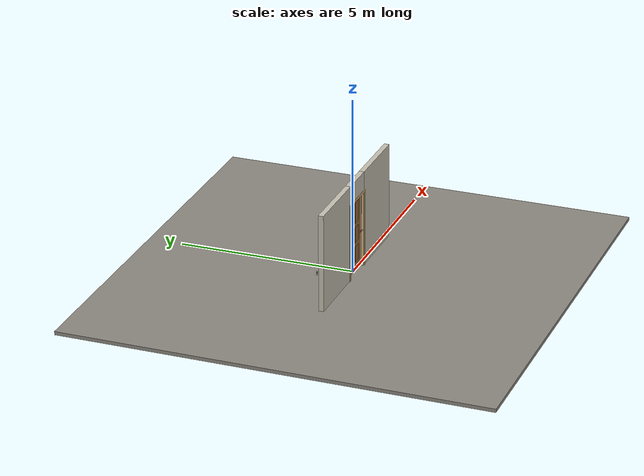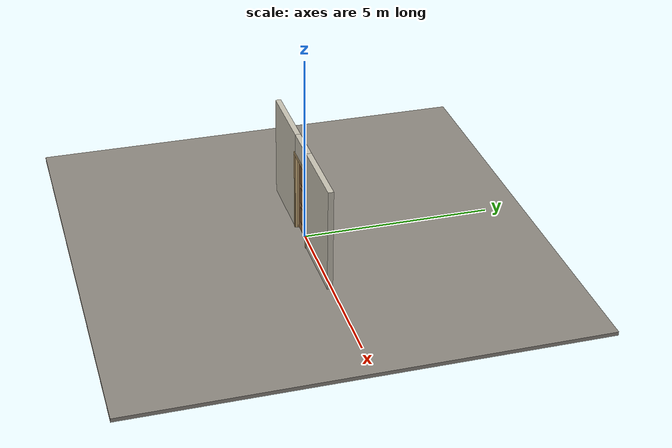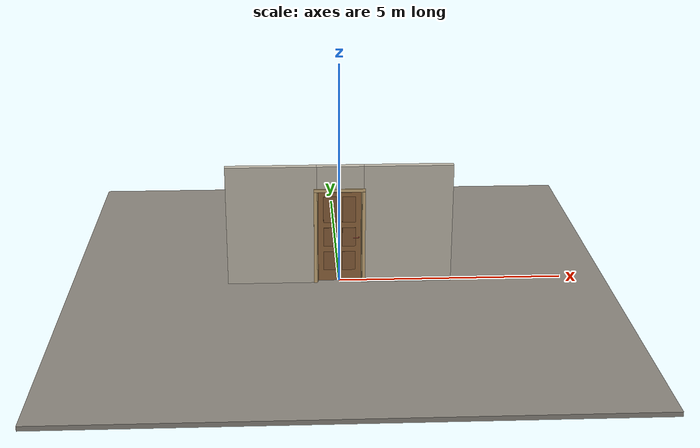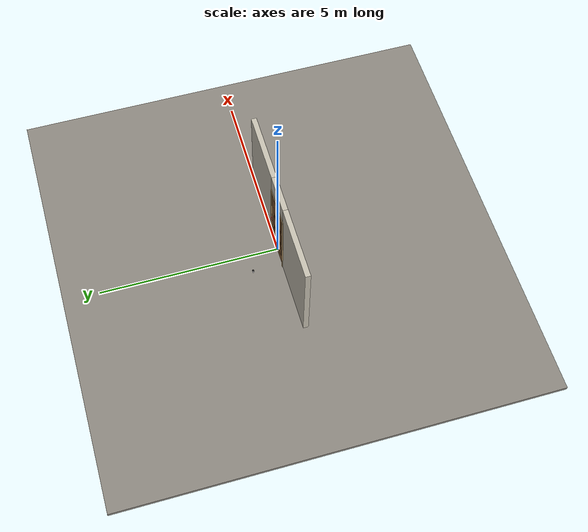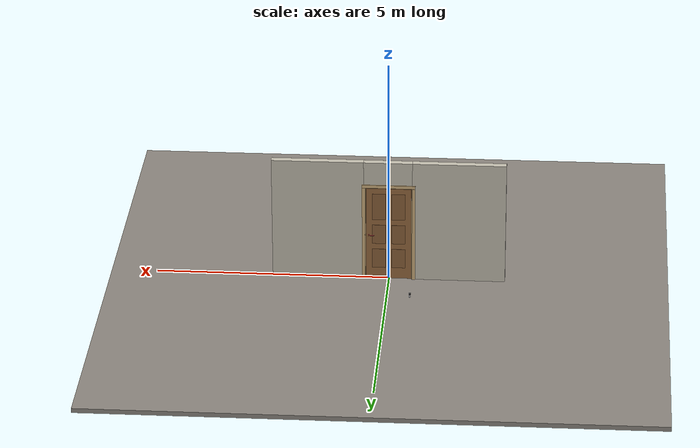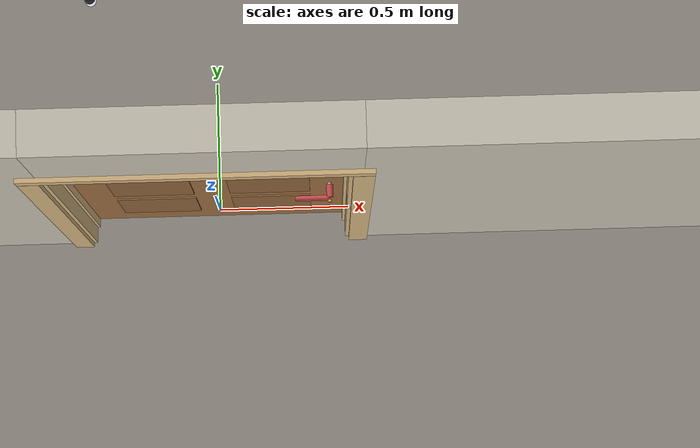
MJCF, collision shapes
<?xml version="1.0" ?>
<mujoco model="db0073_swing_single_full">
  <compiler angle="radian" meshdir="../../hardware" texturedir="../../textures" autolimits="true" inertiafromgeom="false"/>
  <option timestep="0.002" integrator="implicitfast" cone="elliptic" impratio="10" noslip_iterations="3">
    <flag multiccd="enable"/>
  </option>
  <size memory="16M"/>
  <default>
    <geom condim="4" solref="0.005 1" solimp="0.95 0.99 0.001"/>
    <joint solreflimit="0.005 1" solimplimit="0.95 0.99 0.001"/>
    <tendon solreflimit="0.005 1"/>
    <equality solref="0.002 1"/>
  </default>
  <visual>
    <headlight ambient="0.4 0.4 0.4" diffuse="0.7 0.7 0.7" specular="0.2 0.2 0.2"/>
    <quality shadowsize="4096"/>
    <map znear="0.01" zfar="60"/>
  </visual>
  <asset>
    <mesh name="hinge_e22b26c0c1" file="hinge_e22b26c0c1.obj"/>
    <mesh name="hinge_jamb_e1d088f8dc" file="hinge_jamb_e1d088f8dc.obj"/>
    <mesh name="house_numbers_ad0a8e8be0" file="house_numbers_ad0a8e8be0.obj"/>
    <mesh name="lever_9f02b544cf" file="lever_9f02b544cf.obj"/>
    <material name="mat_floor" rgba="0.55 0.53 0.5 1" specular="0.2" shininess="0.15" reflectance="0"/>
    <material name="mat_wall" rgba="0.78 0.76 0.7 1" specular="0.2" shininess="0.1" reflectance="0"/>
    <material name="mat_leaf" rgba="0.6 0.42 0.25 1" specular="0.2" shininess="0.6" reflectance="0"/>
    <material name="mat_leaf_panel" rgba="0.552 0.386 0.23 1" specular="0.2" shininess="0.6" reflectance="0"/>
    <material name="mat_hinge" rgba="0.65 0.66 0.68 1" specular="0.74" shininess="0.5" reflectance="0.36"/>
    <material name="mat_op_nickel_satin" rgba="0.72 0.7 0.66 1" specular="0.8" shininess="0.65" reflectance="0.4"/>
    <material name="mat_trim" rgba="0.85 0.66 0.3 1" specular="0.8" shininess="0.75" reflectance="0.4"/>
    <material name="mat_keyway" rgba="0.05 0.05 0.05 1" specular="0.2" shininess="0.5" reflectance="0"/>
    <material name="mat_bolt" rgba="0.75 0.76 0.77 1" specular="0.8" shininess="0.65" reflectance="0.4"/>
    <material name="mat_frame" rgba="0.82 0.7 0.5 1" specular="0.2" shininess="0.45" reflectance="0"/>
    <material name="mat_seal" rgba="0.1 0.1 0.1 1" specular="0.2" shininess="0.1" reflectance="0"/>
    <material name="mat_numbers" rgba="0.05 0.05 0.05 1" specular="0.38" shininess="0.3" reflectance="0.12"/>
    <material name="mat_bumper_stop" rgba="0.08 0.08 0.08 1" specular="0.2" shininess="0.1" reflectance="0"/>
    <material name="mat_stop_base" rgba="0.9 0.9 0.92 1" specular="0.8" shininess="0.9" reflectance="0.4"/>
    <texture name="skybox" type="skybox" builtin="gradient" rgb1="0.6 0.7 0.85" rgb2="0.9 0.92 0.95" width="256" height="256"/>
  </asset>
  <worldbody>
    <light name="sun" pos="1.5 -2.5 4" dir="-0.3 0.5 -0.8" directional="true" diffuse="0.8 0.8 0.8" specular="0.3 0.3 0.3" castshadow="true"/>
    <light name="fill" pos="-1.5 2.5 3" dir="0.3 -0.5 -0.7" directional="true" diffuse="0.35 0.35 0.4" castshadow="false"/>
    <camera name="robot_view" pos="0 -2.681312 1.812087" xyaxes="1 0 0 0 0.26963 0.962964" fovy="52"/>
    <camera name="far_view" pos="0 2.594313 1.812087" xyaxes="-1 0 0 0 -0.26963 0.962964" fovy="52"/>
    <camera name="iso" pos="2.004737 -2.259262 2.234138" xyaxes="0.741536 0.670913 0 -0.242917 0.268487 0.932151" fovy="46"/>
    <camera name="detail_handle" pos="0.507 -0.877 1.33" xyaxes="0.97561 0.219512 0 -0.070934 0.315262 0.94635" fovy="38"/>
    <geom name="floor" type="box" size="6 6 0.05" pos="0 0 -0.05" material="mat_floor" group="0" contype="1" conaffinity="1" friction="0.8 0.005 0.0001" density="2400"/>
    <geom name="wall_left" type="box" size="0.9975 0.0725 1.3735" pos="-1.5025 -0.0435 1.3735" material="mat_wall" group="0" contype="1" conaffinity="1" friction="0.6 0.005 0.0001" density="800"/>
    <geom name="wall_right" type="box" size="0.9825 0.0725 1.3735" pos="1.5175 -0.0435 1.3735" material="mat_wall" group="0" contype="1" conaffinity="1" friction="0.6 0.005 0.0001" density="800"/>
    <geom name="wall_header" type="box" size="0.52 0.0725 0.2755" pos="0.015 -0.0435 2.4715" material="mat_wall" group="0" contype="1" conaffinity="1" friction="0.6 0.005 0.0001" density="800"/>
    <geom name="hinge_0_jamb" type="mesh" mesh="hinge_jamb_e1d088f8dc" pos="-0.483 0.029 0.259" quat="0 1 0 0" material="mat_hinge" group="1" contype="0" conaffinity="0" density="7850"/>
    <geom name="hinge_1_jamb" type="mesh" mesh="hinge_jamb_e1d088f8dc" pos="-0.483 0.029 1.076" quat="0 1 0 0" material="mat_hinge" group="1" contype="0" conaffinity="0" density="7850"/>
    <geom name="hinge_2_jamb" type="mesh" mesh="hinge_jamb_e1d088f8dc" pos="-0.483 0.029 1.963" quat="0 1 0 0" material="mat_hinge" group="1" contype="0" conaffinity="0" density="7850"/>
    <geom name="jamb_hinge" type="box" size="0.0095 0.0725 1.0735" pos="-0.4955 -0.0435 1.0735" material="mat_frame" group="0" contype="1" conaffinity="1" friction="0.6 0.005 0.0001" density="400"/>
    <geom name="strike_1050_wall_n" type="box" size="0.0245 0.05475 0.015" pos="0.5105 -0.06125 1.05" material="mat_frame" group="0" contype="1" conaffinity="1" friction="0.6 0.005 0.0001" density="400"/>
    <geom name="strike_1050_wall_p" type="box" size="0.0245 0.008 0.015" pos="0.5105 0.0145 1.05" material="mat_frame" group="0" contype="1" conaffinity="1" friction="0.6 0.005 0.0001" density="400"/>
    <geom name="strike_1050_ramp" type="box" size="0.0245 0.016771 0.015" pos="0.515413 0.026543 1.05" quat="0.973249 0 0 -0.229753" material="mat_frame" group="0" contype="1" conaffinity="1" friction="0.12 0.005 0.0001" density="400"/>
    <geom name="strike_1050_back" type="box" size="0.0155 0.0065 0.015" pos="0.5195 0 1.05" material="mat_frame" group="0" contype="1" conaffinity="1" friction="0.6 0.005 0.0001" density="400"/>
    <geom name="jamb_strike_0" type="box" size="0.0245 0.0725 0.5175" pos="0.5105 -0.0435 0.5175" material="mat_frame" group="0" contype="1" conaffinity="1" friction="0.6 0.005 0.0001" density="400"/>
    <geom name="jamb_strike_1" type="box" size="0.0245 0.0725 0.541" pos="0.5105 -0.0435 1.606" material="mat_frame" group="0" contype="1" conaffinity="1" friction="0.6 0.005 0.0001" density="400"/>
    <geom name="jamb_head" type="box" size="0.52 0.0725 0.0095" pos="0.015 -0.0435 2.1565" material="mat_frame" group="0" contype="1" conaffinity="1" friction="0.6 0.005 0.0001" density="400"/>
    <geom name="head_stud" type="box" size="0.52 0.0725 0.015" pos="0.015 -0.0435 2.181" material="mat_wall" group="0" contype="1" conaffinity="1" friction="0.6 0.005 0.0001" density="500"/>
    <geom name="stop_hinge" type="box" size="0.0055 0.016 1.0735" pos="-0.4805 -0.0385 1.0735" material="mat_frame" group="0" contype="1" conaffinity="1" friction="0.6 0.005 0.0001" density="400"/>
    <geom name="stop_strike" type="box" size="0.0055 0.016 1.0735" pos="0.4805 -0.0385 1.0735" material="mat_frame" group="0" contype="1" conaffinity="1" friction="0.6 0.005 0.0001" density="400"/>
    <geom name="stop_head" type="box" size="0.486 0.016 0.0055" pos="0 -0.0385 2.1415" material="mat_frame" group="0" contype="1" conaffinity="1" friction="0.6 0.005 0.0001" density="400"/>
    <geom name="seal_hinge" type="box" size="0.004 0.002 1.0735" pos="-0.483 -0.024 1.0735" material="mat_seal" group="1" contype="0" conaffinity="0" density="1100"/>
    <geom name="seal_strike" type="box" size="0.004 0.002 1.0735" pos="0.483 -0.024 1.0735" material="mat_seal" group="1" contype="0" conaffinity="0" density="1100"/>
    <geom name="seal_head" type="box" size="0.466 0.002 0.008" pos="0 -0.024 2.135" material="mat_seal" group="1" contype="0" conaffinity="0" density="1100"/>
    <geom name="casing_l_n" type="box" size="0.035 0.008 1.083" pos="-0.535 -0.124 1.0735" material="mat_frame" group="2" contype="0" conaffinity="0" density="400"/>
    <geom name="casing_r_n" type="box" size="0.035 0.008 1.083" pos="0.535 -0.124 1.0735" material="mat_frame" group="2" contype="0" conaffinity="0" density="400"/>
    <geom name="casing_h_n" type="box" size="0.57 0.008 0.035" pos="0 -0.124 2.196" material="mat_frame" group="2" contype="0" conaffinity="0" density="400"/>
    <geom name="casing_l_p" type="box" size="0.035 0.008 1.083" pos="-0.535 0.037 1.0735" material="mat_frame" group="2" contype="0" conaffinity="0" density="400"/>
    <geom name="casing_r_p" type="box" size="0.035 0.008 1.083" pos="0.535 0.037 1.0735" material="mat_frame" group="2" contype="0" conaffinity="0" density="400"/>
    <geom name="casing_h_p" type="box" size="0.57 0.008 0.035" pos="0 0.037 2.196" material="mat_frame" group="2" contype="0" conaffinity="0" density="400"/>
    <geom name="door_stop_base" type="cylinder" size="0.022 0.003" pos="-0.499 0.84925 0.003" material="mat_stop_base" group="0" contype="1" conaffinity="1" friction="0.6 0.005 0.0001" density="7850"/>
    <geom name="door_stop_post" type="cylinder" size="0.012 0.0245" pos="-0.499 0.84925 0.0305" material="mat_stop_base" group="0" contype="1" conaffinity="1" friction="0.6 0.005 0.0001" density="7850"/>
    <geom name="door_stop_bumper" type="cylinder" size="0.022 0.02" pos="-0.499 0.84925 0.075" material="mat_bumper_stop" group="0" contype="1" conaffinity="1" friction="0.6 0.005 0.0001" density="1100"/>
    <site name="approach_point" pos="0 -1.5 0" quat="1 0 0 0" size="0.05" rgba="0.2 0.9 0.2 0.5" group="4"/>
    <site name="goal_point" pos="0 1.5 0" quat="1 0 0 0" size="0.05" rgba="0.2 0.9 0.2 0.5" group="4"/>
    <site name="door_plane_center" pos="0 0 1.0735" quat="1 0 0 0" size="0.02" rgba="0.2 0.9 0.2 0.5" group="4"/>
    <body name="leaf" pos="-0.486 0 0">
      <inertial pos="0.479749 0.000172 1.077587" mass="60.918235" quat="0.500201 0.499584 -0.500453 0.499762" diaginertia="4.843756311 23.2161809 28.039604345"/>
      <joint name="leaf_hinge" type="hinge" axis="0 0 1" pos="0.003 0.029 0" limited="true" range="0 1.570796" solreflimit="0.02 1" damping="0.384212" frictionloss="1.226994" armature="0.02"/>
      <geom name="leaf_slab" type="box" size="0.4825 0.022 1.067" pos="0.4855 0 1.076" material="mat_leaf" group="0" contype="1" conaffinity="1" friction="0.3 0.005 0.0001" density="1"/>
      <geom name="leaf_panel_0_n" type="box" size="0.145675 0.003 0.221884" pos="0.274825 -0.025 0.485624" material="mat_leaf_panel" group="1" contype="0" conaffinity="0" density="1"/>
      <geom name="leaf_panel_0_p" type="box" size="0.145675 0.003 0.221884" pos="0.274825 0.025 0.485624" material="mat_leaf_panel" group="1" contype="0" conaffinity="0" density="1"/>
      <geom name="leaf_panel_1_n" type="box" size="0.145675 0.003 0.221884" pos="0.696175 -0.025 0.485624" material="mat_leaf_panel" group="1" contype="0" conaffinity="0" density="1"/>
      <geom name="leaf_panel_1_p" type="box" size="0.145675 0.003 0.221884" pos="0.696175 0.025 0.485624" material="mat_leaf_panel" group="1" contype="0" conaffinity="0" density="1"/>
      <geom name="leaf_panel_2_n" type="box" size="0.145675 0.003 0.221884" pos="0.274825 -0.025 1.059392" material="mat_leaf_panel" group="1" contype="0" conaffinity="0" density="1"/>
      <geom name="leaf_panel_2_p" type="box" size="0.145675 0.003 0.221884" pos="0.274825 0.025 1.059392" material="mat_leaf_panel" group="1" contype="0" conaffinity="0" density="1"/>
      <geom name="leaf_panel_3_n" type="box" size="0.145675 0.003 0.221884" pos="0.696175 -0.025 1.059392" material="mat_leaf_panel" group="1" contype="0" conaffinity="0" density="1"/>
      <geom name="leaf_panel_3_p" type="box" size="0.145675 0.003 0.221884" pos="0.696175 0.025 1.059392" material="mat_leaf_panel" group="1" contype="0" conaffinity="0" density="1"/>
      <geom name="leaf_panel_4_n" type="box" size="0.145675 0.003 0.302512" pos="0.274825 -0.025 1.713788" material="mat_leaf_panel" group="1" contype="0" conaffinity="0" density="1"/>
      <geom name="leaf_panel_4_p" type="box" size="0.145675 0.003 0.302512" pos="0.274825 0.025 1.713788" material="mat_leaf_panel" group="1" contype="0" conaffinity="0" density="1"/>
      <geom name="leaf_panel_5_n" type="box" size="0.145675 0.003 0.302512" pos="0.696175 -0.025 1.713788" material="mat_leaf_panel" group="1" contype="0" conaffinity="0" density="1"/>
      <geom name="leaf_panel_5_p" type="box" size="0.145675 0.003 0.302512" pos="0.696175 0.025 1.713788" material="mat_leaf_panel" group="1" contype="0" conaffinity="0" density="1"/>
      <geom name="hinge_0" type="mesh" mesh="hinge_e22b26c0c1" pos="0.003 0.029 0.259" quat="0 1 0 0" material="mat_hinge" group="1" contype="0" conaffinity="0" density="7850"/>
      <geom name="hinge_1" type="mesh" mesh="hinge_e22b26c0c1" pos="0.003 0.029 1.076" quat="0 1 0 0" material="mat_hinge" group="1" contype="0" conaffinity="0" density="7850"/>
      <geom name="hinge_2" type="mesh" mesh="hinge_e22b26c0c1" pos="0.003 0.029 1.963" quat="0 1 0 0" material="mat_hinge" group="1" contype="0" conaffinity="0" density="7850"/>
      <geom name="leaf_latch_bolt_faceplate" type="box" size="0.0006 0.011 0.025" pos="0.9674 0 1.05" material="mat_bolt" group="1" contype="0" conaffinity="0" density="8500"/>
      <geom name="house_numbers" type="mesh" mesh="house_numbers_ad0a8e8be0" pos="0.4855 -0.022 1.793" quat="0.707107 0.707107 0 0" material="mat_numbers" group="2" contype="0" conaffinity="0" density="1000"/>
      <site name="leaf_edge_mid" pos="0.968 0 1.067" quat="1 0 0 0" size="0.02" rgba="0.2 0.9 0.2 0.5" group="4"/>
      <body name="leaf_handle" pos="0.913 0 1.05">
        <inertial pos="-0.027758 0.000956 0" mass="1.005882" quat="0.702403 0 0 -0.71178" diaginertia="0.001794484 0.003806886 0.005422316"/>
        <joint name="leaf_handle_hinge" type="hinge" axis="0 -1 0" limited="true" range="0 0.96" damping="0.245633" frictionloss="0.048" stiffness="1.2" springref="-0.458333" armature="0.01"/>
        <geom name="leaf_handle_spindle" type="cylinder" size="0.006 0.03" pos="0 0 0" quat="0.707107 -0.707107 0 0" material="mat_op_nickel_satin" group="1" contype="0" conaffinity="0" density="7850"/>
        <geom name="leaf_handle_lever_n" type="mesh" mesh="lever_9f02b544cf" pos="0 -0.022 0" quat="0.707107 0.707107 0 0" material="mat_op_nickel_satin" group="1" contype="0" conaffinity="0" density="3000"/>
        <geom name="leaf_handle_lever_col_n" type="capsule" size="0.0095 0.053" pos="-0.0625 -0.077 0" quat="0.707107 0 -0.707107 0" material="mat_op_nickel_satin" group="3" contype="1" conaffinity="1" rgba="0.8 0.3 0.3 0.25" friction="0.7 0.01 0.0001" density="3000"/>
        <geom name="leaf_handle_hub_col_n" type="cylinder" size="0.012 0.022" pos="0 -0.052 0" quat="0.707107 -0.707107 0 0" material="mat_op_nickel_satin" group="3" contype="1" conaffinity="1" rgba="0.8 0.3 0.3 0.25" friction="0.6 0.005 0.0001" density="3000"/>
        <geom name="leaf_handle_turn_button_n" type="cylinder" size="0.006 0.005" pos="0 -0.0875 0" quat="0.707107 -0.707107 0 0" material="mat_trim" group="1" contype="0" conaffinity="0" density="7100"/>
        <geom name="leaf_handle_lever_p" type="mesh" mesh="lever_9f02b544cf" pos="0 0.022 0" quat="-0.707107 0.707107 0 0" material="mat_op_nickel_satin" group="1" contype="0" conaffinity="0" density="3000"/>
        <geom name="leaf_handle_lever_col_p" type="capsule" size="0.0095 0.053" pos="-0.0625 0.077 0" quat="0.707107 0 -0.707107 0" material="mat_op_nickel_satin" group="3" contype="1" conaffinity="1" rgba="0.8 0.3 0.3 0.25" friction="0.7 0.01 0.0001" density="3000"/>
        <geom name="leaf_handle_hub_col_p" type="cylinder" size="0.012 0.022" pos="0 0.052 0" quat="0.707107 -0.707107 0 0" material="mat_op_nickel_satin" group="3" contype="1" conaffinity="1" rgba="0.8 0.3 0.3 0.25" friction="0.6 0.005 0.0001" density="3000"/>
        <geom name="leaf_handle_cylinder_p" type="cylinder" size="0.0085 0.006" pos="0 0.0845 0" quat="0.707107 -0.707107 0 0" material="mat_trim" group="1" contype="0" conaffinity="0" density="7100"/>
        <geom name="leaf_handle_keyway_p" type="box" size="0.0012 0.0008 0.006" pos="0 0.091 0" material="mat_keyway" group="1" contype="0" conaffinity="0" density="7100"/>
        <site name="leaf_handle_grip_n" pos="-0.1 -0.077 0" quat="1 0 0 0" size="0.012" rgba="0.2 0.9 0.2 0.5" group="4"/>
        <site name="leaf_handle_grip_p" pos="-0.1 0.077 0" quat="1 0 0 0" size="0.012" rgba="0.2 0.9 0.2 0.5" group="4"/>
      </body>
      <body name="leaf_latch_bolt" pos="0.968 0 1.05">
        <inertial pos="-0.008 0 0" mass="0.027149" quat="0 0 0.707107 0.707107" diaginertia="0.000000328 0.000003943 0.000003943"/>
        <joint name="leaf_latch_bolt_slide" type="slide" axis="-1 0 0" limited="true" range="0 0.014" damping="2" frictionloss="0.3" stiffness="400" springref="-0.01" armature="0.1"/>
        <geom name="leaf_latch_bolt_capsule" type="capsule" size="0.005 0.017" pos="-0.008 0 0" quat="0.707107 0 0.707107 0" material="mat_bolt" group="0" contype="1" conaffinity="1" friction="0.2 0.005 0.0001" density="8500"/>
      </body>
    </body>
  </worldbody>
  <tendon>
    <fixed name="leaf_latch_bolt_coupling" limited="true" range="0 10">
      <joint joint="leaf_latch_bolt_slide" coef="1"/>
      <joint joint="leaf_handle_hinge" coef="-0.015385"/>
    </fixed>
  </tendon>
  <sensor>
    <jointpos name="leaf_hinge_pos" joint="leaf_hinge"/>
    <jointvel name="leaf_hinge_vel" joint="leaf_hinge"/>
    <jointpos name="leaf_handle_hinge_pos" joint="leaf_handle_hinge"/>
    <jointvel name="leaf_handle_hinge_vel" joint="leaf_handle_hinge"/>
    <jointpos name="leaf_latch_bolt_slide_pos" joint="leaf_latch_bolt_slide"/>
    <jointvel name="leaf_latch_bolt_slide_vel" joint="leaf_latch_bolt_slide"/>
  </sensor>
</mujoco>
